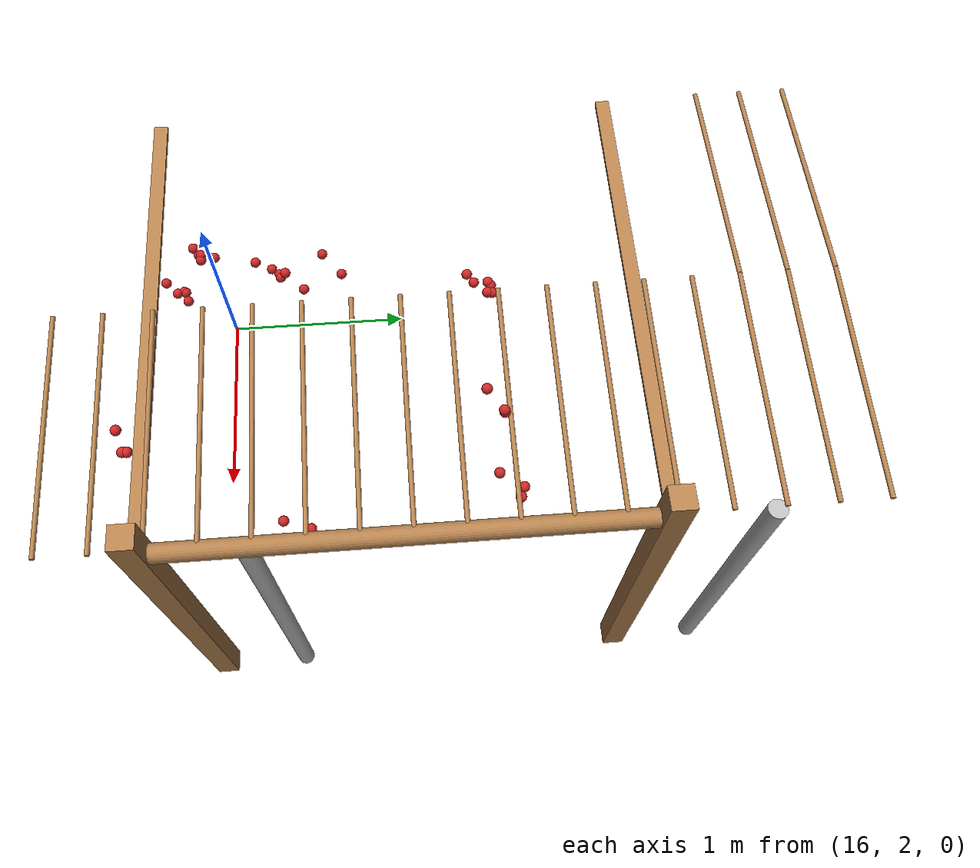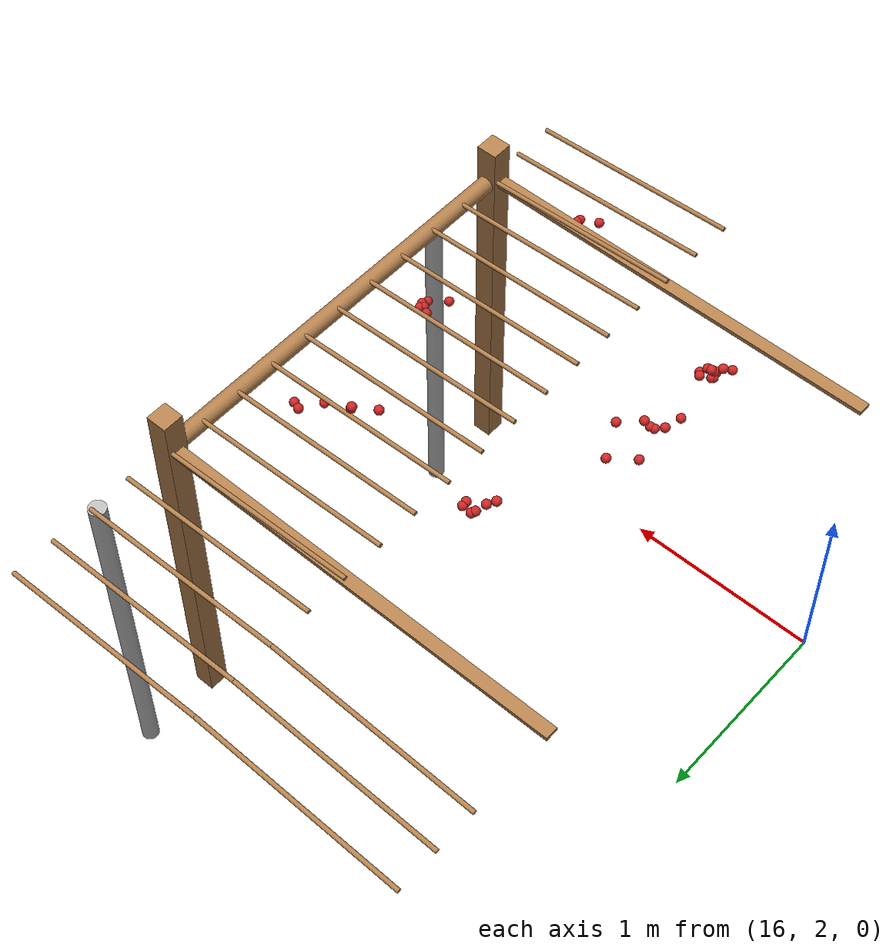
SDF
<sdf version="1.4">
 <model name="pergola">
  <include><name>post_100</name><pose>18.0 2.0 0 0 0 0</pose><uri>model://post</uri></include>
  <include><name>post_101</name><pose>18.0 4.0 0 0 0 0</pose><uri>model://post</uri></include>
  <link name="beam_89">
   <pose>17.0 2.0 1.81 0 0 0</pose>
   <collision name="collision"><geometry><box><size>2.0 0.06 0.02</size></box></geometry></collision>
   <visual name="visual">
    <geometry><box><size>2.0 0.06 0.02</size></box></geometry>
    <material><script><name>Gazebo/Wood</name></script></material>
   </visual>
   <inertial>
    <mass>5</mass>
    <inertia>
     <ixx>0.0016666666666666668</ixx>
     <ixy>0.0</ixy>
     <ixz>0.0</ixz>
     <iyy>1.6681666666666664</iyy>
     <iyz>0.0</iyz>
     <izz>1.6668333333333332</izz>
    </inertia>
   </inertial>
  </link>
  <link name="beam_90">
   <pose>17.0 4.0 1.81 0 0 0</pose>
   <collision name="collision"><geometry><box><size>2.0 0.06 0.02</size></box></geometry></collision>
   <visual name="visual">
    <geometry><box><size>2.0 0.06 0.02</size></box></geometry>
    <material><script><name>Gazebo/Wood</name></script></material>
   </visual>
   <inertial>
    <mass>5</mass>
    <inertia>
     <ixx>0.0016666666666666668</ixx>
     <ixy>0.0</ixy>
     <ixz>0.0</ixz>
     <iyy>1.6681666666666664</iyy>
     <iyz>0.0</iyz>
     <izz>1.6668333333333332</izz>
    </inertia>
   </inertial>
  </link>
  <include><name>tree_91</name><pose>18.0 2.4 0 0 0 0</pose><uri>model://tree_trunk</uri></include>
  <include><name>tree_92</name><pose>18.0 4.4 0 0 0 0</pose><uri>model://tree_trunk</uri></include>
  <link name="baseBranch_91">
   <pose>18.0 3.0 1.8 1.5707963267948966 0 0</pose>
   <collision name="collision">
    <geometry><cylinder><radius>0.04</radius><length>1.94</length></cylinder></geometry>
   </collision>
   <visual name="visual">
    <geometry><cylinder><radius>0.04</radius><length>1.94</length></cylinder></geometry>
    <material><script><name>Gazebo/WoodFloor</name></script></material>
   </visual>
   <inertial>
    <mass>10</mass>
    <inertia>
     <ixx>3.140333333333333</ixx>
     <ixy>0.0</ixy>
     <ixz>0.0</ixz>
     <iyy>3.140333333333333</iyy>
     <iyz>0.0</iyz>
     <izz>0.008</izz>
    </inertia>
   </inertial>
  </link>
  <link name="vine_1617">
   <pose>17.5 1.6300000000000001 1.85 0 -1.5208379310729538 0</pose>
   <collision name="collision">
    <geometry><cylinder><radius>0.01</radius><length>1.0012492197250393</length></cylinder></geometry>
   </collision>
   <visual name="visual">
    <geometry><cylinder><radius>0.01</radius><length>1.0012492197250393</length></cylinder></geometry>
    <material><script><name>Gazebo/WoodFloor</name></script></material>
   </visual>
   <inertial>
    <mass>5</mass>
    <inertia>
     <ixx>0.41783333333333345</ixx>
     <ixy>0.0</ixy>
     <ixz>0.0</ixz>
     <iyy>0.41783333333333345</iyy>
     <iyz>0.0</iyz>
     <izz>0.00025</izz>
    </inertia>
   </inertial>
  </link>
  <link name="vine_1619">
   <pose>17.5 1.83 1.85 0 -1.5208379310729538 0</pose>
   <collision name="collision">
    <geometry><cylinder><radius>0.01</radius><length>1.0012492197250393</length></cylinder></geometry>
   </collision>
   <visual name="visual">
    <geometry><cylinder><radius>0.01</radius><length>1.0012492197250393</length></cylinder></geometry>
    <material><script><name>Gazebo/WoodFloor</name></script></material>
   </visual>
   <inertial>
    <mass>5</mass>
    <inertia>
     <ixx>0.41783333333333345</ixx>
     <ixy>0.0</ixy>
     <ixz>0.0</ixz>
     <iyy>0.41783333333333345</iyy>
     <iyz>0.0</iyz>
     <izz>0.00025</izz>
    </inertia>
   </inertial>
  </link>
  <link name="vine_1621">
   <pose>17.5 2.03 1.85 0 -1.5208379310729538 0</pose>
   <collision name="collision">
    <geometry><cylinder><radius>0.01</radius><length>1.0012492197250393</length></cylinder></geometry>
   </collision>
   <visual name="visual">
    <geometry><cylinder><radius>0.01</radius><length>1.0012492197250393</length></cylinder></geometry>
    <material><script><name>Gazebo/WoodFloor</name></script></material>
   </visual>
   <inertial>
    <mass>5</mass>
    <inertia>
     <ixx>0.41783333333333345</ixx>
     <ixy>0.0</ixy>
     <ixz>0.0</ixz>
     <iyy>0.41783333333333345</iyy>
     <iyz>0.0</iyz>
     <izz>0.00025</izz>
    </inertia>
   </inertial>
  </link>
  <link name="vine_1623">
   <pose>17.5 2.23 1.85 0 -1.5208379310729538 0</pose>
   <collision name="collision">
    <geometry><cylinder><radius>0.01</radius><length>1.0012492197250393</length></cylinder></geometry>
   </collision>
   <visual name="visual">
    <geometry><cylinder><radius>0.01</radius><length>1.0012492197250393</length></cylinder></geometry>
    <material><script><name>Gazebo/WoodFloor</name></script></material>
   </visual>
   <inertial>
    <mass>5</mass>
    <inertia>
     <ixx>0.41783333333333345</ixx>
     <ixy>0.0</ixy>
     <ixz>0.0</ixz>
     <iyy>0.41783333333333345</iyy>
     <iyz>0.0</iyz>
     <izz>0.00025</izz>
    </inertia>
   </inertial>
  </link>
  <link name="vine_1625">
   <pose>17.5 2.43 1.85 0 -1.5208379310729538 0</pose>
   <collision name="collision">
    <geometry><cylinder><radius>0.01</radius><length>1.0012492197250393</length></cylinder></geometry>
   </collision>
   <visual name="visual">
    <geometry><cylinder><radius>0.01</radius><length>1.0012492197250393</length></cylinder></geometry>
    <material><script><name>Gazebo/WoodFloor</name></script></material>
   </visual>
   <inertial>
    <mass>5</mass>
    <inertia>
     <ixx>0.41783333333333345</ixx>
     <ixy>0.0</ixy>
     <ixz>0.0</ixz>
     <iyy>0.41783333333333345</iyy>
     <iyz>0.0</iyz>
     <izz>0.00025</izz>
    </inertia>
   </inertial>
  </link>
  <link name="vine_1627">
   <pose>17.5 2.63 1.85 0 -1.5208379310729538 0</pose>
   <collision name="collision">
    <geometry><cylinder><radius>0.01</radius><length>1.0012492197250393</length></cylinder></geometry>
   </collision>
   <visual name="visual">
    <geometry><cylinder><radius>0.01</radius><length>1.0012492197250393</length></cylinder></geometry>
    <material><script><name>Gazebo/WoodFloor</name></script></material>
   </visual>
   <inertial>
    <mass>5</mass>
    <inertia>
     <ixx>0.41783333333333345</ixx>
     <ixy>0.0</ixy>
     <ixz>0.0</ixz>
     <iyy>0.41783333333333345</iyy>
     <iyz>0.0</iyz>
     <izz>0.00025</izz>
    </inertia>
   </inertial>
  </link>
  <link name="vine_1629">
   <pose>17.5 2.83 1.85 0 -1.5208379310729538 0</pose>
   <collision name="collision">
    <geometry><cylinder><radius>0.01</radius><length>1.0012492197250393</length></cylinder></geometry>
   </collision>
   <visual name="visual">
    <geometry><cylinder><radius>0.01</radius><length>1.0012492197250393</length></cylinder></geometry>
    <material><script><name>Gazebo/WoodFloor</name></script></material>
   </visual>
   <inertial>
    <mass>5</mass>
    <inertia>
     <ixx>0.41783333333333345</ixx>
     <ixy>0.0</ixy>
     <ixz>0.0</ixz>
     <iyy>0.41783333333333345</iyy>
     <iyz>0.0</iyz>
     <izz>0.00025</izz>
    </inertia>
   </inertial>
  </link>
  <link name="vine_1631">
   <pose>17.5 3.03 1.85 0 -1.5208379310729538 0</pose>
   <collision name="collision">
    <geometry><cylinder><radius>0.01</radius><length>1.0012492197250393</length></cylinder></geometry>
   </collision>
   <visual name="visual">
    <geometry><cylinder><radius>0.01</radius><length>1.0012492197250393</length></cylinder></geometry>
    <material><script><name>Gazebo/WoodFloor</name></script></material>
   </visual>
   <inertial>
    <mass>5</mass>
    <inertia>
     <ixx>0.41783333333333345</ixx>
     <ixy>0.0</ixy>
     <ixz>0.0</ixz>
     <iyy>0.41783333333333345</iyy>
     <iyz>0.0</iyz>
     <izz>0.00025</izz>
    </inertia>
   </inertial>
  </link>
  <link name="vine_1633">
   <pose>17.5 3.23 1.85 0 -1.5208379310729538 0</pose>
   <collision name="collision">
    <geometry><cylinder><radius>0.01</radius><length>1.0012492197250393</length></cylinder></geometry>
   </collision>
   <visual name="visual">
    <geometry><cylinder><radius>0.01</radius><length>1.0012492197250393</length></cylinder></geometry>
    <material><script><name>Gazebo/WoodFloor</name></script></material>
   </visual>
   <inertial>
    <mass>5</mass>
    <inertia>
     <ixx>0.41783333333333345</ixx>
     <ixy>0.0</ixy>
     <ixz>0.0</ixz>
     <iyy>0.41783333333333345</iyy>
     <iyz>0.0</iyz>
     <izz>0.00025</izz>
    </inertia>
   </inertial>
  </link>
  <link name="vine_1635">
   <pose>17.5 3.43 1.85 0 -1.5208379310729538 0</pose>
   <collision name="collision">
    <geometry><cylinder><radius>0.01</radius><length>1.0012492197250393</length></cylinder></geometry>
   </collision>
   <visual name="visual">
    <geometry><cylinder><radius>0.01</radius><length>1.0012492197250393</length></cylinder></geometry>
    <material><script><name>Gazebo/WoodFloor</name></script></material>
   </visual>
   <inertial>
    <mass>5</mass>
    <inertia>
     <ixx>0.41783333333333345</ixx>
     <ixy>0.0</ixy>
     <ixz>0.0</ixz>
     <iyy>0.41783333333333345</iyy>
     <iyz>0.0</iyz>
     <izz>0.00025</izz>
    </inertia>
   </inertial>
  </link>
  <link name="vine_1637">
   <pose>17.5 3.63 1.85 0 -1.5208379310729538 0</pose>
   <collision name="collision">
    <geometry><cylinder><radius>0.01</radius><length>1.0012492197250393</length></cylinder></geometry>
   </collision>
   <visual name="visual">
    <geometry><cylinder><radius>0.01</radius><length>1.0012492197250393</length></cylinder></geometry>
    <material><script><name>Gazebo/WoodFloor</name></script></material>
   </visual>
   <inertial>
    <mass>5</mass>
    <inertia>
     <ixx>0.41783333333333345</ixx>
     <ixy>0.0</ixy>
     <ixz>0.0</ixz>
     <iyy>0.41783333333333345</iyy>
     <iyz>0.0</iyz>
     <izz>0.00025</izz>
    </inertia>
   </inertial>
  </link>
  <link name="vine_1639">
   <pose>17.5 3.83 1.85 0 -1.5208379310729538 0</pose>
   <collision name="collision">
    <geometry><cylinder><radius>0.01</radius><length>1.0012492197250393</length></cylinder></geometry>
   </collision>
   <visual name="visual">
    <geometry><cylinder><radius>0.01</radius><length>1.0012492197250393</length></cylinder></geometry>
    <material><script><name>Gazebo/WoodFloor</name></script></material>
   </visual>
   <inertial>
    <mass>5</mass>
    <inertia>
     <ixx>0.41783333333333345</ixx>
     <ixy>0.0</ixy>
     <ixz>0.0</ixz>
     <iyy>0.41783333333333345</iyy>
     <iyz>0.0</iyz>
     <izz>0.00025</izz>
    </inertia>
   </inertial>
  </link>
  <link name="vine_1641">
   <pose>17.5 4.03 1.85 0 -1.5208379310729538 0</pose>
   <collision name="collision">
    <geometry><cylinder><radius>0.01</radius><length>1.0012492197250393</length></cylinder></geometry>
   </collision>
   <visual name="visual">
    <geometry><cylinder><radius>0.01</radius><length>1.0012492197250393</length></cylinder></geometry>
    <material><script><name>Gazebo/WoodFloor</name></script></material>
   </visual>
   <inertial>
    <mass>5</mass>
    <inertia>
     <ixx>0.41783333333333345</ixx>
     <ixy>0.0</ixy>
     <ixz>0.0</ixz>
     <iyy>0.41783333333333345</iyy>
     <iyz>0.0</iyz>
     <izz>0.00025</izz>
    </inertia>
   </inertial>
  </link>
  <link name="vine_1643">
   <pose>17.5 4.23 1.85 0 -1.5208379310729538 0</pose>
   <collision name="collision">
    <geometry><cylinder><radius>0.01</radius><length>1.0012492197250393</length></cylinder></geometry>
   </collision>
   <visual name="visual">
    <geometry><cylinder><radius>0.01</radius><length>1.0012492197250393</length></cylinder></geometry>
    <material><script><name>Gazebo/WoodFloor</name></script></material>
   </visual>
   <inertial>
    <mass>5</mass>
    <inertia>
     <ixx>0.41783333333333345</ixx>
     <ixy>0.0</ixy>
     <ixz>0.0</ixz>
     <iyy>0.41783333333333345</iyy>
     <iyz>0.0</iyz>
     <izz>0.00025</izz>
    </inertia>
   </inertial>
  </link>
  <link name="vine_1644">
   <pose>16.5 4.430000000000001 1.85 0 1.5208379310729538 0</pose>
   <collision name="collision">
    <geometry><cylinder><radius>0.01</radius><length>1.0012492197250393</length></cylinder></geometry>
   </collision>
   <visual name="visual">
    <geometry><cylinder><radius>0.01</radius><length>1.0012492197250393</length></cylinder></geometry>
    <material><script><name>Gazebo/WoodFloor</name></script></material>
   </visual>
   <inertial>
    <mass>5</mass>
    <inertia>
     <ixx>0.41783333333333345</ixx>
     <ixy>0.0</ixy>
     <ixz>0.0</ixz>
     <iyy>0.41783333333333345</iyy>
     <iyz>0.0</iyz>
     <izz>0.00025</izz>
    </inertia>
   </inertial>
  </link>
  <link name="vine_1645">
   <pose>17.5 4.430000000000001 1.85 0 -1.5208379310729538 0</pose>
   <collision name="collision">
    <geometry><cylinder><radius>0.01</radius><length>1.0012492197250393</length></cylinder></geometry>
   </collision>
   <visual name="visual">
    <geometry><cylinder><radius>0.01</radius><length>1.0012492197250393</length></cylinder></geometry>
    <material><script><name>Gazebo/WoodFloor</name></script></material>
   </visual>
   <inertial>
    <mass>5</mass>
    <inertia>
     <ixx>0.41783333333333345</ixx>
     <ixy>0.0</ixy>
     <ixz>0.0</ixz>
     <iyy>0.41783333333333345</iyy>
     <iyz>0.0</iyz>
     <izz>0.00025</izz>
    </inertia>
   </inertial>
  </link>
  <link name="vine_1646">
   <pose>16.5 4.630000000000001 1.85 0 1.5208379310729538 0</pose>
   <collision name="collision">
    <geometry><cylinder><radius>0.01</radius><length>1.0012492197250393</length></cylinder></geometry>
   </collision>
   <visual name="visual">
    <geometry><cylinder><radius>0.01</radius><length>1.0012492197250393</length></cylinder></geometry>
    <material><script><name>Gazebo/WoodFloor</name></script></material>
   </visual>
   <inertial>
    <mass>5</mass>
    <inertia>
     <ixx>0.41783333333333345</ixx>
     <ixy>0.0</ixy>
     <ixz>0.0</ixz>
     <iyy>0.41783333333333345</iyy>
     <iyz>0.0</iyz>
     <izz>0.00025</izz>
    </inertia>
   </inertial>
  </link>
  <link name="vine_1647">
   <pose>17.5 4.630000000000001 1.85 0 -1.5208379310729538 0</pose>
   <collision name="collision">
    <geometry><cylinder><radius>0.01</radius><length>1.0012492197250393</length></cylinder></geometry>
   </collision>
   <visual name="visual">
    <geometry><cylinder><radius>0.01</radius><length>1.0012492197250393</length></cylinder></geometry>
    <material><script><name>Gazebo/WoodFloor</name></script></material>
   </visual>
   <inertial>
    <mass>5</mass>
    <inertia>
     <ixx>0.41783333333333345</ixx>
     <ixy>0.0</ixy>
     <ixz>0.0</ixz>
     <iyy>0.41783333333333345</iyy>
     <iyz>0.0</iyz>
     <izz>0.00025</izz>
    </inertia>
   </inertial>
  </link>
  <link name="vine_1648">
   <pose>16.5 4.830000000000001 1.85 0 1.5208379310729538 0</pose>
   <collision name="collision">
    <geometry><cylinder><radius>0.01</radius><length>1.0012492197250393</length></cylinder></geometry>
   </collision>
   <visual name="visual">
    <geometry><cylinder><radius>0.01</radius><length>1.0012492197250393</length></cylinder></geometry>
    <material><script><name>Gazebo/WoodFloor</name></script></material>
   </visual>
   <inertial>
    <mass>5</mass>
    <inertia>
     <ixx>0.41783333333333345</ixx>
     <ixy>0.0</ixy>
     <ixz>0.0</ixz>
     <iyy>0.41783333333333345</iyy>
     <iyz>0.0</iyz>
     <izz>0.00025</izz>
    </inertia>
   </inertial>
  </link>
  <link name="vine_1649">
   <pose>17.5 4.830000000000001 1.85 0 -1.5208379310729538 0</pose>
   <collision name="collision">
    <geometry><cylinder><radius>0.01</radius><length>1.0012492197250393</length></cylinder></geometry>
   </collision>
   <visual name="visual">
    <geometry><cylinder><radius>0.01</radius><length>1.0012492197250393</length></cylinder></geometry>
    <material><script><name>Gazebo/WoodFloor</name></script></material>
   </visual>
   <inertial>
    <mass>5</mass>
    <inertia>
     <ixx>0.41783333333333345</ixx>
     <ixy>0.0</ixy>
     <ixz>0.0</ixz>
     <iyy>0.41783333333333345</iyy>
     <iyz>0.0</iyz>
     <izz>0.00025</izz>
    </inertia>
   </inertial>
  </link>
  <link name="fruit_53">
   <pose>16.64464252926636 1.9833671027585984 1.5266288259027379 0 0 0</pose>
   <collision name="fruit_collision_53"><geometry><sphere><radius>0.022</radius></sphere></geometry></collision>
   <visual name="visual">
    <geometry><sphere><radius>0.022</radius></sphere></geometry>
    <material><script><name>Gazebo/Red</name></script></material>
   </visual>
   <inertial>
    <mass>0.05</mass>
    <inertia>
     <ixx>9.679999999999999e-06</ixx>
     <ixy>0.0</ixy>
     <ixz>0.0</ixz>
     <iyy>9.679999999999999e-06</iyy>
     <iyz>0.0</iyz>
     <izz>9.679999999999999e-06</izz>
    </inertia>
   </inertial>
   <sensor name="fruit_contact_53" type="contact">
    <contact><collision>fruit_collision_53</collision></contact>
   </sensor>
  </link>
  <link name="fruit_88">
   <pose>16.600757641409352 2.144003105750513 1.7197741959315507 0 0 0</pose>
   <collision name="fruit_collision_88"><geometry><sphere><radius>0.022</radius></sphere></geometry></collision>
   <visual name="visual">
    <geometry><sphere><radius>0.022</radius></sphere></geometry>
    <material><script><name>Gazebo/Red</name></script></material>
   </visual>
   <inertial>
    <mass>0.05</mass>
    <inertia>
     <ixx>9.679999999999999e-06</ixx>
     <ixy>0.0</ixy>
     <ixz>0.0</ixz>
     <iyy>9.679999999999999e-06</iyy>
     <iyz>0.0</iyz>
     <izz>9.679999999999999e-06</izz>
    </inertia>
   </inertial>
   <sensor name="fruit_contact_88" type="contact">
    <contact><collision>fruit_collision_88</collision></contact>
   </sensor>
  </link>
  <link name="fruit_91">
   <pose>17.740289982881425 3.375540882074367 1.7096741701914528 0 0 0</pose>
   <collision name="fruit_collision_91"><geometry><sphere><radius>0.022</radius></sphere></geometry></collision>
   <visual name="visual">
    <geometry><sphere><radius>0.022</radius></sphere></geometry>
    <material><script><name>Gazebo/Red</name></script></material>
   </visual>
   <inertial>
    <mass>0.05</mass>
    <inertia>
     <ixx>9.679999999999999e-06</ixx>
     <ixy>0.0</ixy>
     <ixz>0.0</ixz>
     <iyy>9.679999999999999e-06</iyy>
     <iyz>0.0</iyz>
     <izz>9.679999999999999e-06</izz>
    </inertia>
   </inertial>
   <sensor name="fruit_contact_91" type="contact">
    <contact><collision>fruit_collision_91</collision></contact>
   </sensor>
  </link>
  <link name="fruit_113">
   <pose>17.480500321513748 1.8873644495639934 1.7846561038898676 0 0 0</pose>
   <collision name="fruit_collision_113"><geometry><sphere><radius>0.022</radius></sphere></geometry></collision>
   <visual name="visual">
    <geometry><sphere><radius>0.022</radius></sphere></geometry>
    <material><script><name>Gazebo/Red</name></script></material>
   </visual>
   <inertial>
    <mass>0.05</mass>
    <inertia>
     <ixx>9.679999999999999e-06</ixx>
     <ixy>0.0</ixy>
     <ixz>0.0</ixz>
     <iyy>9.679999999999999e-06</iyy>
     <iyz>0.0</iyz>
     <izz>9.679999999999999e-06</izz>
    </inertia>
   </inertial>
   <sensor name="fruit_contact_113" type="contact">
    <contact><collision>fruit_collision_113</collision></contact>
   </sensor>
  </link>
  <link name="fruit_164">
   <pose>16.709267344016265 2.5314213881905046 1.6480742769852041 0 0 0</pose>
   <collision name="fruit_collision_164"><geometry><sphere><radius>0.022</radius></sphere></geometry></collision>
   <visual name="visual">
    <geometry><sphere><radius>0.022</radius></sphere></geometry>
    <material><script><name>Gazebo/Red</name></script></material>
   </visual>
   <inertial>
    <mass>0.05</mass>
    <inertia>
     <ixx>9.679999999999999e-06</ixx>
     <ixy>0.0</ixy>
     <ixz>0.0</ixz>
     <iyy>9.679999999999999e-06</iyy>
     <iyz>0.0</iyz>
     <izz>9.679999999999999e-06</izz>
    </inertia>
   </inertial>
   <sensor name="fruit_contact_164" type="contact">
    <contact><collision>fruit_collision_164</collision></contact>
   </sensor>
  </link>
  <link name="fruit_175">
   <pose>17.45256117195078 3.3465164010013297 1.8755065378785913 0 0 0</pose>
   <collision name="fruit_collision_175"><geometry><sphere><radius>0.022</radius></sphere></geometry></collision>
   <visual name="visual">
    <geometry><sphere><radius>0.022</radius></sphere></geometry>
    <material><script><name>Gazebo/Red</name></script></material>
   </visual>
   <inertial>
    <mass>0.05</mass>
    <inertia>
     <ixx>9.679999999999999e-06</ixx>
     <ixy>0.0</ixy>
     <ixz>0.0</ixz>
     <iyy>9.679999999999999e-06</iyy>
     <iyz>0.0</iyz>
     <izz>9.679999999999999e-06</izz>
    </inertia>
   </inertial>
   <sensor name="fruit_contact_175" type="contact">
    <contact><collision>fruit_collision_175</collision></contact>
   </sensor>
  </link>
  <link name="fruit_267">
   <pose>17.81484446685827 2.5068495463439153 1.5414924772172667 0 0 0</pose>
   <collision name="fruit_collision_267"><geometry><sphere><radius>0.022</radius></sphere></geometry></collision>
   <visual name="visual">
    <geometry><sphere><radius>0.022</radius></sphere></geometry>
    <material><script><name>Gazebo/Red</name></script></material>
   </visual>
   <inertial>
    <mass>0.05</mass>
    <inertia>
     <ixx>9.679999999999999e-06</ixx>
     <ixy>0.0</ixy>
     <ixz>0.0</ixz>
     <iyy>9.679999999999999e-06</iyy>
     <iyz>0.0</iyz>
     <izz>9.679999999999999e-06</izz>
    </inertia>
   </inertial>
   <sensor name="fruit_contact_267" type="contact">
    <contact><collision>fruit_collision_267</collision></contact>
   </sensor>
  </link>
  <link name="fruit_276">
   <pose>16.608928104242704 2.6921861306006702 1.6274259911202003 0 0 0</pose>
   <collision name="fruit_collision_276"><geometry><sphere><radius>0.022</radius></sphere></geometry></collision>
   <visual name="visual">
    <geometry><sphere><radius>0.022</radius></sphere></geometry>
    <material><script><name>Gazebo/Red</name></script></material>
   </visual>
   <inertial>
    <mass>0.05</mass>
    <inertia>
     <ixx>9.679999999999999e-06</ixx>
     <ixy>0.0</ixy>
     <ixz>0.0</ixz>
     <iyy>9.679999999999999e-06</iyy>
     <iyz>0.0</iyz>
     <izz>9.679999999999999e-06</izz>
    </inertia>
   </inertial>
   <sensor name="fruit_contact_276" type="contact">
    <contact><collision>fruit_collision_276</collision></contact>
   </sensor>
  </link>
  <link name="fruit_311">
   <pose>16.851261539689304 3.3149186866298646 1.765421442260888 0 0 0</pose>
   <collision name="fruit_collision_311"><geometry><sphere><radius>0.022</radius></sphere></geometry></collision>
   <visual name="visual">
    <geometry><sphere><radius>0.022</radius></sphere></geometry>
    <material><script><name>Gazebo/Red</name></script></material>
   </visual>
   <inertial>
    <mass>0.05</mass>
    <inertia>
     <ixx>9.679999999999999e-06</ixx>
     <ixy>0.0</ixy>
     <ixz>0.0</ixz>
     <iyy>9.679999999999999e-06</iyy>
     <iyz>0.0</iyz>
     <izz>9.679999999999999e-06</izz>
    </inertia>
   </inertial>
   <sensor name="fruit_contact_311" type="contact">
    <contact><collision>fruit_collision_311</collision></contact>
   </sensor>
  </link>
  <link name="fruit_328">
   <pose>16.61845591660223 2.3943992537257657 1.6086385885566263 0 0 0</pose>
   <collision name="fruit_collision_328"><geometry><sphere><radius>0.022</radius></sphere></geometry></collision>
   <visual name="visual">
    <geometry><sphere><radius>0.022</radius></sphere></geometry>
    <material><script><name>Gazebo/Red</name></script></material>
   </visual>
   <inertial>
    <mass>0.05</mass>
    <inertia>
     <ixx>9.679999999999999e-06</ixx>
     <ixy>0.0</ixy>
     <ixz>0.0</ixz>
     <iyy>9.679999999999999e-06</iyy>
     <iyz>0.0</iyz>
     <izz>9.679999999999999e-06</izz>
    </inertia>
   </inertial>
   <sensor name="fruit_contact_328" type="contact">
    <contact><collision>fruit_collision_328</collision></contact>
   </sensor>
  </link>
  <link name="fruit_356">
   <pose>16.65585346135575 2.1767522903428134 1.707864462571187 0 0 0</pose>
   <collision name="fruit_collision_356"><geometry><sphere><radius>0.022</radius></sphere></geometry></collision>
   <visual name="visual">
    <geometry><sphere><radius>0.022</radius></sphere></geometry>
    <material><script><name>Gazebo/Red</name></script></material>
   </visual>
   <inertial>
    <mass>0.05</mass>
    <inertia>
     <ixx>9.679999999999999e-06</ixx>
     <ixy>0.0</ixy>
     <ixz>0.0</ixz>
     <iyy>9.679999999999999e-06</iyy>
     <iyz>0.0</iyz>
     <izz>9.679999999999999e-06</izz>
    </inertia>
   </inertial>
   <sensor name="fruit_contact_356" type="contact">
    <contact><collision>fruit_collision_356</collision></contact>
   </sensor>
  </link>
  <link name="fruit_372">
   <pose>17.551304371979896 3.408529566043771 1.8610545935683387 0 0 0</pose>
   <collision name="fruit_collision_372"><geometry><sphere><radius>0.022</radius></sphere></geometry></collision>
   <visual name="visual">
    <geometry><sphere><radius>0.022</radius></sphere></geometry>
    <material><script><name>Gazebo/Red</name></script></material>
   </visual>
   <inertial>
    <mass>0.05</mass>
    <inertia>
     <ixx>9.679999999999999e-06</ixx>
     <ixy>0.0</ixy>
     <ixz>0.0</ixz>
     <iyy>9.679999999999999e-06</iyy>
     <iyz>0.0</iyz>
     <izz>9.679999999999999e-06</izz>
    </inertia>
   </inertial>
   <sensor name="fruit_contact_372" type="contact">
    <contact><collision>fruit_collision_372</collision></contact>
   </sensor>
  </link>
  <link name="fruit_385">
   <pose>16.6948268149234 2.503984551955668 1.5931754048931523 0 0 0</pose>
   <collision name="fruit_collision_385"><geometry><sphere><radius>0.022</radius></sphere></geometry></collision>
   <visual name="visual">
    <geometry><sphere><radius>0.022</radius></sphere></geometry>
    <material><script><name>Gazebo/Red</name></script></material>
   </visual>
   <inertial>
    <mass>0.05</mass>
    <inertia>
     <ixx>9.679999999999999e-06</ixx>
     <ixy>0.0</ixy>
     <ixz>0.0</ixz>
     <iyy>9.679999999999999e-06</iyy>
     <iyz>0.0</iyz>
     <izz>9.679999999999999e-06</izz>
    </inertia>
   </inertial>
   <sensor name="fruit_contact_385" type="contact">
    <contact><collision>fruit_collision_385</collision></contact>
   </sensor>
  </link>
  <link name="fruit_388">
   <pose>17.51853783688051 1.985242144223354 1.7770119225531606 0 0 0</pose>
   <collision name="fruit_collision_388"><geometry><sphere><radius>0.022</radius></sphere></geometry></collision>
   <visual name="visual">
    <geometry><sphere><radius>0.022</radius></sphere></geometry>
    <material><script><name>Gazebo/Red</name></script></material>
   </visual>
   <inertial>
    <mass>0.05</mass>
    <inertia>
     <ixx>9.679999999999999e-06</ixx>
     <ixy>0.0</ixy>
     <ixz>0.0</ixz>
     <iyy>9.679999999999999e-06</iyy>
     <iyz>0.0</iyz>
     <izz>9.679999999999999e-06</izz>
    </inertia>
   </inertial>
   <sensor name="fruit_contact_388" type="contact">
    <contact><collision>fruit_collision_388</collision></contact>
   </sensor>
  </link>
  <link name="fruit_404">
   <pose>17.883995278069943 2.597152593940931 1.5330594229000836 0 0 0</pose>
   <collision name="fruit_collision_404"><geometry><sphere><radius>0.022</radius></sphere></geometry></collision>
   <visual name="visual">
    <geometry><sphere><radius>0.022</radius></sphere></geometry>
    <material><script><name>Gazebo/Red</name></script></material>
   </visual>
   <inertial>
    <mass>0.05</mass>
    <inertia>
     <ixx>9.679999999999999e-06</ixx>
     <ixy>0.0</ixy>
     <ixz>0.0</ixz>
     <iyy>9.679999999999999e-06</iyy>
     <iyz>0.0</iyz>
     <izz>9.679999999999999e-06</izz>
    </inertia>
   </inertial>
   <sensor name="fruit_contact_404" type="contact">
    <contact><collision>fruit_collision_404</collision></contact>
   </sensor>
  </link>
  <link name="fruit_429">
   <pose>17.804051602123437 3.4660747085400367 1.7053052445367458 0 0 0</pose>
   <collision name="fruit_collision_429"><geometry><sphere><radius>0.022</radius></sphere></geometry></collision>
   <visual name="visual">
    <geometry><sphere><radius>0.022</radius></sphere></geometry>
    <material><script><name>Gazebo/Red</name></script></material>
   </visual>
   <inertial>
    <mass>0.05</mass>
    <inertia>
     <ixx>9.679999999999999e-06</ixx>
     <ixy>0.0</ixy>
     <ixz>0.0</ixz>
     <iyy>9.679999999999999e-06</iyy>
     <iyz>0.0</iyz>
     <izz>9.679999999999999e-06</izz>
    </inertia>
   </inertial>
   <sensor name="fruit_contact_429" type="contact">
    <contact><collision>fruit_collision_429</collision></contact>
   </sensor>
  </link>
  <link name="fruit_473">
   <pose>17.897126277843405 2.5581997195374724 1.5245734068497752 0 0 0</pose>
   <collision name="fruit_collision_473"><geometry><sphere><radius>0.022</radius></sphere></geometry></collision>
   <visual name="visual">
    <geometry><sphere><radius>0.022</radius></sphere></geometry>
    <material><script><name>Gazebo/Red</name></script></material>
   </visual>
   <inertial>
    <mass>0.05</mass>
    <inertia>
     <ixx>9.679999999999999e-06</ixx>
     <ixy>0.0</ixy>
     <ixz>0.0</ixz>
     <iyy>9.679999999999999e-06</iyy>
     <iyz>0.0</iyz>
     <izz>9.679999999999999e-06</izz>
    </inertia>
   </inertial>
   <sensor name="fruit_contact_473" type="contact">
    <contact><collision>fruit_collision_473</collision></contact>
   </sensor>
  </link>
  <link name="fruit_499">
   <pose>16.79565005281237 2.612045885437783 1.6430784220137604 0 0 0</pose>
   <collision name="fruit_collision_499"><geometry><sphere><radius>0.022</radius></sphere></geometry></collision>
   <visual name="visual">
    <geometry><sphere><radius>0.022</radius></sphere></geometry>
    <material><script><name>Gazebo/Red</name></script></material>
   </visual>
   <inertial>
    <mass>0.05</mass>
    <inertia>
     <ixx>9.679999999999999e-06</ixx>
     <ixy>0.0</ixy>
     <ixz>0.0</ixz>
     <iyy>9.679999999999999e-06</iyy>
     <iyz>0.0</iyz>
     <izz>9.679999999999999e-06</izz>
    </inertia>
   </inertial>
   <sensor name="fruit_contact_499" type="contact">
    <contact><collision>fruit_collision_499</collision></contact>
   </sensor>
  </link>
  <link name="fruit_510">
   <pose>16.746183449097302 2.0848902156530196 1.526390869663075 0 0 0</pose>
   <collision name="fruit_collision_510"><geometry><sphere><radius>0.022</radius></sphere></geometry></collision>
   <visual name="visual">
    <geometry><sphere><radius>0.022</radius></sphere></geometry>
    <material><script><name>Gazebo/Red</name></script></material>
   </visual>
   <inertial>
    <mass>0.05</mass>
    <inertia>
     <ixx>9.679999999999999e-06</ixx>
     <ixy>0.0</ixy>
     <ixz>0.0</ixz>
     <iyy>9.679999999999999e-06</iyy>
     <iyz>0.0</iyz>
     <izz>9.679999999999999e-06</izz>
    </inertia>
   </inertial>
   <sensor name="fruit_contact_510" type="contact">
    <contact><collision>fruit_collision_510</collision></contact>
   </sensor>
  </link>
  <link name="fruit_533">
   <pose>16.636202425582322 2.1787971827055626 1.716311919735533 0 0 0</pose>
   <collision name="fruit_collision_533"><geometry><sphere><radius>0.022</radius></sphere></geometry></collision>
   <visual name="visual">
    <geometry><sphere><radius>0.022</radius></sphere></geometry>
    <material><script><name>Gazebo/Red</name></script></material>
   </visual>
   <inertial>
    <mass>0.05</mass>
    <inertia>
     <ixx>9.679999999999999e-06</ixx>
     <ixy>0.0</ixy>
     <ixz>0.0</ixz>
     <iyy>9.679999999999999e-06</iyy>
     <iyz>0.0</iyz>
     <izz>9.679999999999999e-06</izz>
    </inertia>
   </inertial>
   <sensor name="fruit_contact_533" type="contact">
    <contact><collision>fruit_collision_533</collision></contact>
   </sensor>
  </link>
  <link name="fruit_534">
   <pose>17.569194828376563 1.931840459216844 1.765528949147715 0 0 0</pose>
   <collision name="fruit_collision_534"><geometry><sphere><radius>0.022</radius></sphere></geometry></collision>
   <visual name="visual">
    <geometry><sphere><radius>0.022</radius></sphere></geometry>
    <material><script><name>Gazebo/Red</name></script></material>
   </visual>
   <inertial>
    <mass>0.05</mass>
    <inertia>
     <ixx>9.679999999999999e-06</ixx>
     <ixy>0.0</ixy>
     <ixz>0.0</ixz>
     <iyy>9.679999999999999e-06</iyy>
     <iyz>0.0</iyz>
     <izz>9.679999999999999e-06</izz>
    </inertia>
   </inertial>
   <sensor name="fruit_contact_534" type="contact">
    <contact><collision>fruit_collision_534</collision></contact>
   </sensor>
  </link>
  <link name="fruit_597">
   <pose>16.88119034655299 3.342387314019261 1.745624965269793 0 0 0</pose>
   <collision name="fruit_collision_597"><geometry><sphere><radius>0.022</radius></sphere></geometry></collision>
   <visual name="visual">
    <geometry><sphere><radius>0.022</radius></sphere></geometry>
    <material><script><name>Gazebo/Red</name></script></material>
   </visual>
   <inertial>
    <mass>0.05</mass>
    <inertia>
     <ixx>9.679999999999999e-06</ixx>
     <ixy>0.0</ixy>
     <ixz>0.0</ixz>
     <iyy>9.679999999999999e-06</iyy>
     <iyz>0.0</iyz>
     <izz>9.679999999999999e-06</izz>
    </inertia>
   </inertial>
   <sensor name="fruit_contact_597" type="contact">
    <contact><collision>fruit_collision_597</collision></contact>
   </sensor>
  </link>
  <link name="fruit_623">
   <pose>16.686335777928065 2.0618945370294446 1.5131928679809439 0 0 0</pose>
   <collision name="fruit_collision_623"><geometry><sphere><radius>0.022</radius></sphere></geometry></collision>
   <visual name="visual">
    <geometry><sphere><radius>0.022</radius></sphere></geometry>
    <material><script><name>Gazebo/Red</name></script></material>
   </visual>
   <inertial>
    <mass>0.05</mass>
    <inertia>
     <ixx>9.679999999999999e-06</ixx>
     <ixy>0.0</ixy>
     <ixz>0.0</ixz>
     <iyy>9.679999999999999e-06</iyy>
     <iyz>0.0</iyz>
     <izz>9.679999999999999e-06</izz>
    </inertia>
   </inertial>
   <sensor name="fruit_contact_623" type="contact">
    <contact><collision>fruit_collision_623</collision></contact>
   </sensor>
  </link>
  <link name="fruit_674">
   <pose>16.943055726036977 3.39476503582969 1.760281221723736 0 0 0</pose>
   <collision name="fruit_collision_674"><geometry><sphere><radius>0.022</radius></sphere></geometry></collision>
   <visual name="visual">
    <geometry><sphere><radius>0.022</radius></sphere></geometry>
    <material><script><name>Gazebo/Red</name></script></material>
   </visual>
   <inertial>
    <mass>0.05</mass>
    <inertia>
     <ixx>9.679999999999999e-06</ixx>
     <ixy>0.0</ixy>
     <ixz>0.0</ixz>
     <iyy>9.679999999999999e-06</iyy>
     <iyz>0.0</iyz>
     <izz>9.679999999999999e-06</izz>
    </inertia>
   </inertial>
   <sensor name="fruit_contact_674" type="contact">
    <contact><collision>fruit_collision_674</collision></contact>
   </sensor>
  </link>
  <link name="fruit_711">
   <pose>16.64594649075002 2.4645712382419136 1.5889290365519169 0 0 0</pose>
   <collision name="fruit_collision_711"><geometry><sphere><radius>0.022</radius></sphere></geometry></collision>
   <visual name="visual">
    <geometry><sphere><radius>0.022</radius></sphere></geometry>
    <material><script><name>Gazebo/Red</name></script></material>
   </visual>
   <inertial>
    <mass>0.05</mass>
    <inertia>
     <ixx>9.679999999999999e-06</ixx>
     <ixy>0.0</ixy>
     <ixz>0.0</ixz>
     <iyy>9.679999999999999e-06</iyy>
     <iyz>0.0</iyz>
     <izz>9.679999999999999e-06</izz>
    </inertia>
   </inertial>
   <sensor name="fruit_contact_711" type="contact">
    <contact><collision>fruit_collision_711</collision></contact>
   </sensor>
  </link>
  <link name="fruit_739">
   <pose>17.842845920323548 3.450406805937584 1.699991289153509 0 0 0</pose>
   <collision name="fruit_collision_739"><geometry><sphere><radius>0.022</radius></sphere></geometry></collision>
   <visual name="visual">
    <geometry><sphere><radius>0.022</radius></sphere></geometry>
    <material><script><name>Gazebo/Red</name></script></material>
   </visual>
   <inertial>
    <mass>0.05</mass>
    <inertia>
     <ixx>9.679999999999999e-06</ixx>
     <ixy>0.0</ixy>
     <ixz>0.0</ixz>
     <iyy>9.679999999999999e-06</iyy>
     <iyz>0.0</iyz>
     <izz>9.679999999999999e-06</izz>
    </inertia>
   </inertial>
   <sensor name="fruit_contact_739" type="contact">
    <contact><collision>fruit_collision_739</collision></contact>
   </sensor>
  </link>
  <link name="fruit_756">
   <pose>16.654269925533104 2.236293768170518 1.7173292575785153 0 0 0</pose>
   <collision name="fruit_collision_756"><geometry><sphere><radius>0.022</radius></sphere></geometry></collision>
   <visual name="visual">
    <geometry><sphere><radius>0.022</radius></sphere></geometry>
    <material><script><name>Gazebo/Red</name></script></material>
   </visual>
   <inertial>
    <mass>0.05</mass>
    <inertia>
     <ixx>9.679999999999999e-06</ixx>
     <ixy>0.0</ixy>
     <ixz>0.0</ixz>
     <iyy>9.679999999999999e-06</iyy>
     <iyz>0.0</iyz>
     <izz>9.679999999999999e-06</izz>
    </inertia>
   </inertial>
   <sensor name="fruit_contact_756" type="contact">
    <contact><collision>fruit_collision_756</collision></contact>
   </sensor>
  </link>
  <link name="fruit_760">
   <pose>16.69293012439732 2.0693891726949545 1.514148351295309 0 0 0</pose>
   <collision name="fruit_collision_760"><geometry><sphere><radius>0.022</radius></sphere></geometry></collision>
   <visual name="visual">
    <geometry><sphere><radius>0.022</radius></sphere></geometry>
    <material><script><name>Gazebo/Red</name></script></material>
   </visual>
   <inertial>
    <mass>0.05</mass>
    <inertia>
     <ixx>9.679999999999999e-06</ixx>
     <ixy>0.0</ixy>
     <ixz>0.0</ixz>
     <iyy>9.679999999999999e-06</iyy>
     <iyz>0.0</iyz>
     <izz>9.679999999999999e-06</izz>
    </inertia>
   </inertial>
   <sensor name="fruit_contact_760" type="contact">
    <contact><collision>fruit_collision_760</collision></contact>
   </sensor>
  </link>
  <link name="fruit_761">
   <pose>16.888341578623074 3.4012186055254583 1.7536066758486526 0 0 0</pose>
   <collision name="fruit_collision_761"><geometry><sphere><radius>0.022</radius></sphere></geometry></collision>
   <visual name="visual">
    <geometry><sphere><radius>0.022</radius></sphere></geometry>
    <material><script><name>Gazebo/Red</name></script></material>
   </visual>
   <inertial>
    <mass>0.05</mass>
    <inertia>
     <ixx>9.679999999999999e-06</ixx>
     <ixy>0.0</ixy>
     <ixz>0.0</ixz>
     <iyy>9.679999999999999e-06</iyy>
     <iyz>0.0</iyz>
     <izz>9.679999999999999e-06</izz>
    </inertia>
   </inertial>
   <sensor name="fruit_contact_761" type="contact">
    <contact><collision>fruit_collision_761</collision></contact>
   </sensor>
  </link>
  <link name="fruit_794">
   <pose>16.71732557948594 2.7748846992778717 1.6253333197053996 0 0 0</pose>
   <collision name="fruit_collision_794"><geometry><sphere><radius>0.022</radius></sphere></geometry></collision>
   <visual name="visual">
    <geometry><sphere><radius>0.022</radius></sphere></geometry>
    <material><script><name>Gazebo/Red</name></script></material>
   </visual>
   <inertial>
    <mass>0.05</mass>
    <inertia>
     <ixx>9.679999999999999e-06</ixx>
     <ixy>0.0</ixy>
     <ixz>0.0</ixz>
     <iyy>9.679999999999999e-06</iyy>
     <iyz>0.0</iyz>
     <izz>9.679999999999999e-06</izz>
    </inertia>
   </inertial>
   <sensor name="fruit_contact_794" type="contact">
    <contact><collision>fruit_collision_794</collision></contact>
   </sensor>
  </link>
  <link name="fruit_800">
   <pose>17.548384710663733 3.4063063350330114 1.8742862892953798 0 0 0</pose>
   <collision name="fruit_collision_800"><geometry><sphere><radius>0.022</radius></sphere></geometry></collision>
   <visual name="visual">
    <geometry><sphere><radius>0.022</radius></sphere></geometry>
    <material><script><name>Gazebo/Red</name></script></material>
   </visual>
   <inertial>
    <mass>0.05</mass>
    <inertia>
     <ixx>9.679999999999999e-06</ixx>
     <ixy>0.0</ixy>
     <ixz>0.0</ixz>
     <iyy>9.679999999999999e-06</iyy>
     <iyz>0.0</iyz>
     <izz>9.679999999999999e-06</izz>
    </inertia>
   </inertial>
   <sensor name="fruit_contact_800" type="contact">
    <contact><collision>fruit_collision_800</collision></contact>
   </sensor>
  </link>
  <link name="fruit_836">
   <pose>17.90604627148733 2.586552975495525 1.5320228645802856 0 0 0</pose>
   <collision name="fruit_collision_836"><geometry><sphere><radius>0.022</radius></sphere></geometry></collision>
   <visual name="visual">
    <geometry><sphere><radius>0.022</radius></sphere></geometry>
    <material><script><name>Gazebo/Red</name></script></material>
   </visual>
   <inertial>
    <mass>0.05</mass>
    <inertia>
     <ixx>9.679999999999999e-06</ixx>
     <ixy>0.0</ixy>
     <ixz>0.0</ixz>
     <iyy>9.679999999999999e-06</iyy>
     <iyz>0.0</iyz>
     <izz>9.679999999999999e-06</izz>
    </inertia>
   </inertial>
   <sensor name="fruit_contact_836" type="contact">
    <contact><collision>fruit_collision_836</collision></contact>
   </sensor>
  </link>
  <link name="fruit_845">
   <pose>16.626701363287726 2.1661511349849496 1.7027974210883776 0 0 0</pose>
   <collision name="fruit_collision_845"><geometry><sphere><radius>0.022</radius></sphere></geometry></collision>
   <visual name="visual">
    <geometry><sphere><radius>0.022</radius></sphere></geometry>
    <material><script><name>Gazebo/Red</name></script></material>
   </visual>
   <inertial>
    <mass>0.05</mass>
    <inertia>
     <ixx>9.679999999999999e-06</ixx>
     <ixy>0.0</ixy>
     <ixz>0.0</ixz>
     <iyy>9.679999999999999e-06</iyy>
     <iyz>0.0</iyz>
     <izz>9.679999999999999e-06</izz>
    </inertia>
   </inertial>
   <sensor name="fruit_contact_845" type="contact">
    <contact><collision>fruit_collision_845</collision></contact>
   </sensor>
  </link>
  <link name="fruit_863">
   <pose>17.851503372703647 2.6161096362281944 1.5306248650585947 0 0 0</pose>
   <collision name="fruit_collision_863"><geometry><sphere><radius>0.022</radius></sphere></geometry></collision>
   <visual name="visual">
    <geometry><sphere><radius>0.022</radius></sphere></geometry>
    <material><script><name>Gazebo/Red</name></script></material>
   </visual>
   <inertial>
    <mass>0.05</mass>
    <inertia>
     <ixx>9.679999999999999e-06</ixx>
     <ixy>0.0</ixy>
     <ixz>0.0</ixz>
     <iyy>9.679999999999999e-06</iyy>
     <iyz>0.0</iyz>
     <izz>9.679999999999999e-06</izz>
    </inertia>
   </inertial>
   <sensor name="fruit_contact_863" type="contact">
    <contact><collision>fruit_collision_863</collision></contact>
   </sensor>
  </link>
  <link name="fruit_869">
   <pose>16.694229277733513 2.033741090357035 1.5140805585248025 0 0 0</pose>
   <collision name="fruit_collision_869"><geometry><sphere><radius>0.022</radius></sphere></geometry></collision>
   <visual name="visual">
    <geometry><sphere><radius>0.022</radius></sphere></geometry>
    <material><script><name>Gazebo/Red</name></script></material>
   </visual>
   <inertial>
    <mass>0.05</mass>
    <inertia>
     <ixx>9.679999999999999e-06</ixx>
     <ixy>0.0</ixy>
     <ixz>0.0</ixz>
     <iyy>9.679999999999999e-06</iyy>
     <iyz>0.0</iyz>
     <izz>9.679999999999999e-06</izz>
    </inertia>
   </inertial>
   <sensor name="fruit_contact_869" type="contact">
    <contact><collision>fruit_collision_869</collision></contact>
   </sensor>
  </link>
  <link name="fruit_901">
   <pose>16.943383012895744 3.4151920656430748 1.7554422691656495 0 0 0</pose>
   <collision name="fruit_collision_901"><geometry><sphere><radius>0.022</radius></sphere></geometry></collision>
   <visual name="visual">
    <geometry><sphere><radius>0.022</radius></sphere></geometry>
    <material><script><name>Gazebo/Red</name></script></material>
   </visual>
   <inertial>
    <mass>0.05</mass>
    <inertia>
     <ixx>9.679999999999999e-06</ixx>
     <ixy>0.0</ixy>
     <ixz>0.0</ixz>
     <iyy>9.679999999999999e-06</iyy>
     <iyz>0.0</iyz>
     <izz>9.679999999999999e-06</izz>
    </inertia>
   </inertial>
   <sensor name="fruit_contact_901" type="contact">
    <contact><collision>fruit_collision_901</collision></contact>
   </sensor>
  </link>
  <link name="fruit_926">
   <pose>17.567149383898037 1.9127398518082588 1.7640102292442665 0 0 0</pose>
   <collision name="fruit_collision_926"><geometry><sphere><radius>0.022</radius></sphere></geometry></collision>
   <visual name="visual">
    <geometry><sphere><radius>0.022</radius></sphere></geometry>
    <material><script><name>Gazebo/Red</name></script></material>
   </visual>
   <inertial>
    <mass>0.05</mass>
    <inertia>
     <ixx>9.679999999999999e-06</ixx>
     <ixy>0.0</ixy>
     <ixz>0.0</ixz>
     <iyy>9.679999999999999e-06</iyy>
     <iyz>0.0</iyz>
     <izz>9.679999999999999e-06</izz>
    </inertia>
   </inertial>
   <sensor name="fruit_contact_926" type="contact">
    <contact><collision>fruit_collision_926</collision></contact>
   </sensor>
  </link>
  <link name="fruit_928">
   <pose>17.895828716636768 2.612764861912754 1.5327059082283174 0 0 0</pose>
   <collision name="fruit_collision_928"><geometry><sphere><radius>0.022</radius></sphere></geometry></collision>
   <visual name="visual">
    <geometry><sphere><radius>0.022</radius></sphere></geometry>
    <material><script><name>Gazebo/Red</name></script></material>
   </visual>
   <inertial>
    <mass>0.05</mass>
    <inertia>
     <ixx>9.679999999999999e-06</ixx>
     <ixy>0.0</ixy>
     <ixz>0.0</ixz>
     <iyy>9.679999999999999e-06</iyy>
     <iyz>0.0</iyz>
     <izz>9.679999999999999e-06</izz>
    </inertia>
   </inertial>
   <sensor name="fruit_contact_928" type="contact">
    <contact><collision>fruit_collision_928</collision></contact>
   </sensor>
  </link>
  <link name="fruit_966">
   <pose>16.676222524639382 2.4986208364289464 1.5895688384579383 0 0 0</pose>
   <collision name="fruit_collision_966"><geometry><sphere><radius>0.022</radius></sphere></geometry></collision>
   <visual name="visual">
    <geometry><sphere><radius>0.022</radius></sphere></geometry>
    <material><script><name>Gazebo/Red</name></script></material>
   </visual>
   <inertial>
    <mass>0.05</mass>
    <inertia>
     <ixx>9.679999999999999e-06</ixx>
     <ixy>0.0</ixy>
     <ixz>0.0</ixz>
     <iyy>9.679999999999999e-06</iyy>
     <iyz>0.0</iyz>
     <izz>9.679999999999999e-06</izz>
    </inertia>
   </inertial>
   <sensor name="fruit_contact_966" type="contact">
    <contact><collision>fruit_collision_966</collision></contact>
   </sensor>
  </link>
  <link name="fruit_979">
   <pose>16.900536936598613 3.4128292047246696 1.7437441971923708 0 0 0</pose>
   <collision name="fruit_collision_979"><geometry><sphere><radius>0.022</radius></sphere></geometry></collision>
   <visual name="visual">
    <geometry><sphere><radius>0.022</radius></sphere></geometry>
    <material><script><name>Gazebo/Red</name></script></material>
   </visual>
   <inertial>
    <mass>0.05</mass>
    <inertia>
     <ixx>9.679999999999999e-06</ixx>
     <ixy>0.0</ixy>
     <ixz>0.0</ixz>
     <iyy>9.679999999999999e-06</iyy>
     <iyz>0.0</iyz>
     <izz>9.679999999999999e-06</izz>
    </inertia>
   </inertial>
   <sensor name="fruit_contact_979" type="contact">
    <contact><collision>fruit_collision_979</collision></contact>
   </sensor>
  </link>
 </model>
</sdf>
